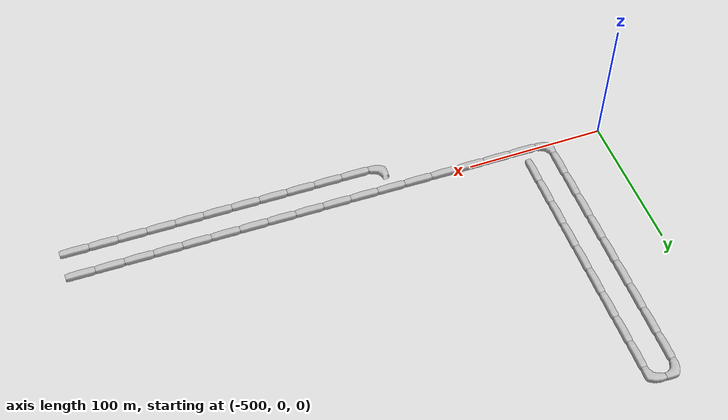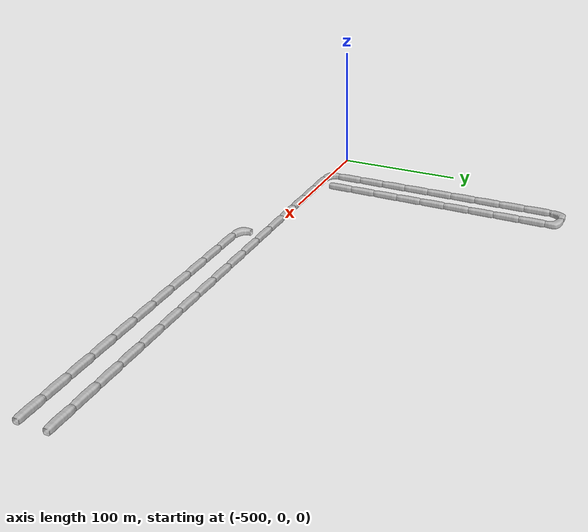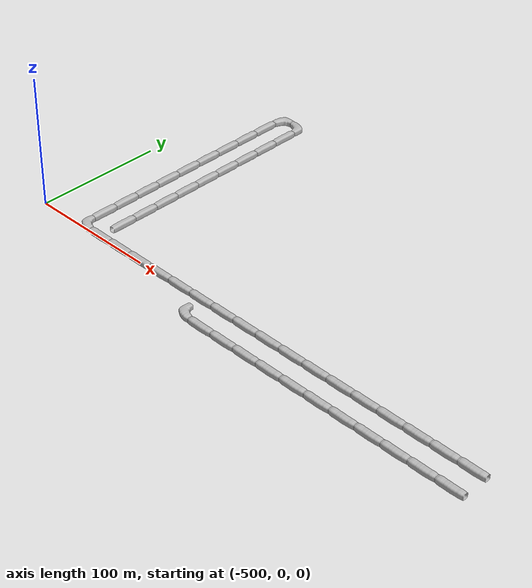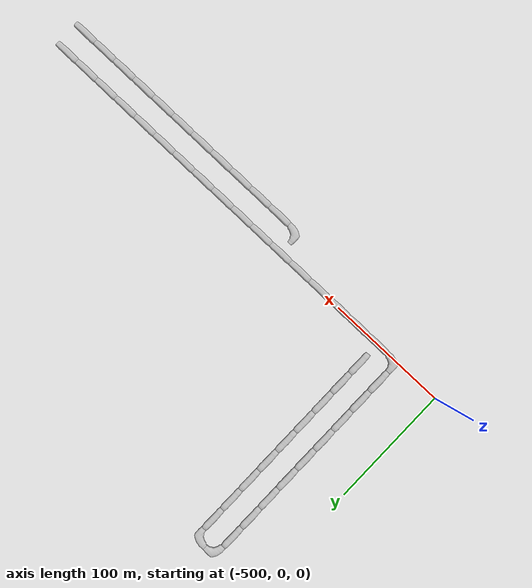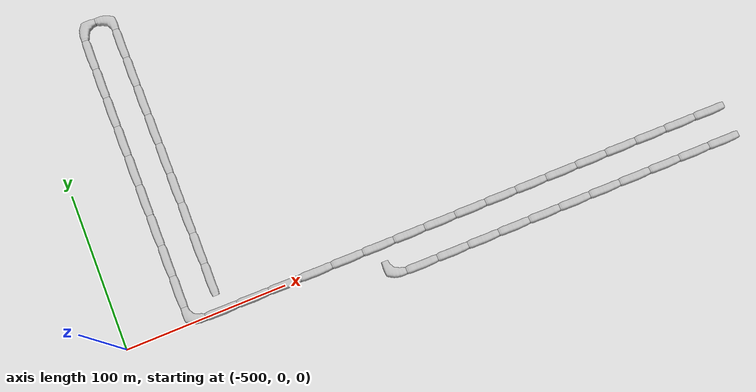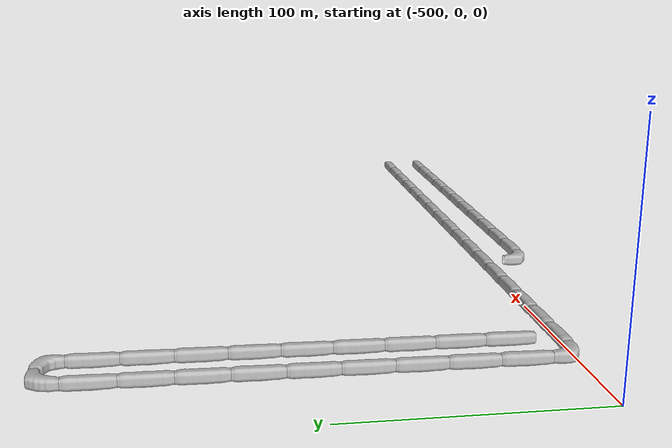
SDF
<sdf version="1.6">
 <world name="cave_8000_4">
  <include>
   <static>true</static>
   <name>cave_-6_-1</name>
   <pose>-120 -20 0 0 0 1.5707963267948966</pose>
   <uri>model://cave_straight_20m</uri>
  </include>
  <include>
   <static>true</static>
   <name>cave_-7_-1</name>
   <pose>-140 -20 0 0 0 1.5707963267948966</pose>
   <uri>model://cave_straight_20m</uri>
  </include>
  <include>
   <static>true</static>
   <name>cave_-8_-1</name>
   <pose>-160 -20 0 0 0 1.5707963267948966</pose>
   <uri>model://cave_straight_20m</uri>
  </include>
  <include>
   <static>true</static>
   <name>cave_-9_-1</name>
   <pose>-180 -20 0 0 0 1.5707963267948966</pose>
   <uri>model://cave_straight_20m</uri>
  </include>
  <include>
   <static>true</static>
   <name>cave_-10_-1</name>
   <pose>-200 -20 0 0 0 1.5707963267948966</pose>
   <uri>model://cave_straight_20m</uri>
  </include>
  <include>
   <static>true</static>
   <name>cave_-11_-1</name>
   <pose>-220 -20 0 0 0 1.5707963267948966</pose>
   <uri>model://cave_straight_20m</uri>
  </include>
  <include>
   <static>true</static>
   <name>cave_-12_-1</name>
   <pose>-240 -20 0 0 0 1.5707963267948966</pose>
   <uri>model://cave_straight_20m</uri>
  </include>
  <include>
   <static>true</static>
   <name>cave_-13_-1</name>
   <pose>-260 -20 0 0 0 1.5707963267948966</pose>
   <uri>model://cave_straight_20m</uri>
  </include>
  <include>
   <static>true</static>
   <name>cave_-14_-1</name>
   <pose>-280 -20 0 0 0 1.5707963267948966</pose>
   <uri>model://cave_straight_20m</uri>
  </include>
  <include>
   <static>true</static>
   <name>cave_-15_-1</name>
   <pose>-300 -20 0 0 0 1.5707963267948966</pose>
   <uri>model://cave_straight_20m</uri>
  </include>
  <include>
   <static>true</static>
   <name>cave_-16_-1</name>
   <pose>-320 -20 0 0 0 1.5707963267948966</pose>
   <uri>model://cave_straight_20m</uri>
  </include>
  <include>
   <static>true</static>
   <name>cave_-17_-1</name>
   <pose>-340 -20 0 0 0 0.0</pose>
   <uri>model://cave_L_20m</uri>
  </include>
  <include>
   <static>true</static>
   <name>cave_-6_0</name>
   <pose>-120 0 0 0 0 1.5707963267948966</pose>
   <uri>model://cave_straight_20m</uri>
  </include>
  <include>
   <static>true</static>
   <name>cave_-7_0</name>
   <pose>-140 0 0 0 0 1.5707963267948966</pose>
   <uri>model://cave_straight_20m</uri>
  </include>
  <include>
   <static>true</static>
   <name>cave_-8_0</name>
   <pose>-160 0 0 0 0 1.5707963267948966</pose>
   <uri>model://cave_straight_20m</uri>
  </include>
  <include>
   <static>true</static>
   <name>cave_-9_0</name>
   <pose>-180 0 0 0 0 1.5707963267948966</pose>
   <uri>model://cave_straight_20m</uri>
  </include>
  <include>
   <static>true</static>
   <name>cave_-10_0</name>
   <pose>-200 0 0 0 0 1.5707963267948966</pose>
   <uri>model://cave_straight_20m</uri>
  </include>
  <include>
   <static>true</static>
   <name>cave_-11_0</name>
   <pose>-220 0 0 0 0 1.5707963267948966</pose>
   <uri>model://cave_straight_20m</uri>
  </include>
  <include>
   <static>true</static>
   <name>cave_-12_0</name>
   <pose>-240 0 0 0 0 1.5707963267948966</pose>
   <uri>model://cave_straight_20m</uri>
  </include>
  <include>
   <static>true</static>
   <name>cave_-13_0</name>
   <pose>-260 0 0 0 0 1.5707963267948966</pose>
   <uri>model://cave_straight_20m</uri>
  </include>
  <include>
   <static>true</static>
   <name>cave_-14_0</name>
   <pose>-280 0 0 0 0 1.5707963267948966</pose>
   <uri>model://cave_straight_20m</uri>
  </include>
  <include>
   <static>true</static>
   <name>cave_-15_0</name>
   <pose>-300 0 0 0 0 1.5707963267948966</pose>
   <uri>model://cave_straight_20m</uri>
  </include>
  <include>
   <static>true</static>
   <name>cave_-16_0</name>
   <pose>-320 0 0 0 0 1.5707963267948966</pose>
   <uri>model://cave_straight_20m</uri>
  </include>
  <include>
   <static>true</static>
   <name>cave_-17_0</name>
   <pose>-340 0 0 0 0 1.5707963267948966</pose>
   <uri>model://cave_straight_20m</uri>
  </include>
  <include>
   <static>true</static>
   <name>cave_-18_0</name>
   <pose>-360 0 0 0 0 1.5707963267948966</pose>
   <uri>model://cave_straight_20m</uri>
  </include>
  <include>
   <static>true</static>
   <name>cave_-19_0</name>
   <pose>-380 0 0 0 0 1.5707963267948966</pose>
   <uri>model://cave_straight_20m</uri>
  </include>
  <include>
   <static>true</static>
   <name>cave_-20_0</name>
   <pose>-400 0 0 0 0 1.5707963267948966</pose>
   <uri>model://cave_straight_20m</uri>
  </include>
  <include>
   <static>true</static>
   <name>cave_-21_0</name>
   <pose>-420 0 0 0 0 1.5707963267948966</pose>
   <uri>model://cave_straight_20m</uri>
  </include>
  <include>
   <static>true</static>
   <name>cave_-22_0</name>
   <pose>-440 0 0 0 0 1.5707963267948966</pose>
   <uri>model://cave_straight_20m</uri>
  </include>
  <include>
   <static>true</static>
   <name>cave_-23_0</name>
   <pose>-460 0 0 0 0 0.0</pose>
   <uri>model://cave_L_20m</uri>
  </include>
  <include>
   <static>true</static>
   <name>cave_-23_1</name>
   <pose>-460 20 0 0 0 0.0</pose>
   <uri>model://cave_straight_20m</uri>
  </include>
  <include>
   <static>true</static>
   <name>cave_-23_2</name>
   <pose>-460 40 0 0 0 0.0</pose>
   <uri>model://cave_straight_20m</uri>
  </include>
  <include>
   <static>true</static>
   <name>cave_-23_3</name>
   <pose>-460 60 0 0 0 0.0</pose>
   <uri>model://cave_straight_20m</uri>
  </include>
  <include>
   <static>true</static>
   <name>cave_-23_4</name>
   <pose>-460 80 0 0 0 0.0</pose>
   <uri>model://cave_straight_20m</uri>
  </include>
  <include>
   <static>true</static>
   <name>cave_-23_5</name>
   <pose>-460 100 0 0 0 0.0</pose>
   <uri>model://cave_straight_20m</uri>
  </include>
  <include>
   <static>true</static>
   <name>cave_-23_6</name>
   <pose>-460 120 0 0 0 0.0</pose>
   <uri>model://cave_straight_20m</uri>
  </include>
  <include>
   <static>true</static>
   <name>cave_-23_7</name>
   <pose>-460 140 0 0 0 0.0</pose>
   <uri>model://cave_straight_20m</uri>
  </include>
  <include>
   <static>true</static>
   <name>cave_-23_8</name>
   <pose>-460 160 0 0 0 0.0</pose>
   <uri>model://cave_straight_20m</uri>
  </include>
  <include>
   <static>true</static>
   <name>cave_-23_9</name>
   <pose>-460 180 0 0 0 0.0</pose>
   <uri>model://cave_straight_20m</uri>
  </include>
  <include>
   <static>true</static>
   <name>cave_-23_10</name>
   <pose>-460 200 0 0 0 -1.5707963267948966</pose>
   <uri>model://cave_L_20m</uri>
  </include>
  <include>
   <static>true</static>
   <name>cave_-22_10</name>
   <pose>-440 200 0 0 0 3.141592653589793</pose>
   <uri>model://cave_L_20m</uri>
  </include>
  <include>
   <static>true</static>
   <name>cave_-22_9</name>
   <pose>-440 180 0 0 0 0.0</pose>
   <uri>model://cave_straight_20m</uri>
  </include>
  <include>
   <static>true</static>
   <name>cave_-22_8</name>
   <pose>-440 160 0 0 0 0.0</pose>
   <uri>model://cave_straight_20m</uri>
  </include>
  <include>
   <static>true</static>
   <name>cave_-22_7</name>
   <pose>-440 140 0 0 0 0.0</pose>
   <uri>model://cave_straight_20m</uri>
  </include>
  <include>
   <static>true</static>
   <name>cave_-22_6</name>
   <pose>-440 120 0 0 0 0.0</pose>
   <uri>model://cave_straight_20m</uri>
  </include>
  <include>
   <static>true</static>
   <name>cave_-22_5</name>
   <pose>-440 100 0 0 0 0.0</pose>
   <uri>model://cave_straight_20m</uri>
  </include>
  <include>
   <static>true</static>
   <name>cave_-22_4</name>
   <pose>-440 80 0 0 0 0.0</pose>
   <uri>model://cave_straight_20m</uri>
  </include>
  <include>
   <static>true</static>
   <name>cave_-22_3</name>
   <pose>-440 60 0 0 0 0.0</pose>
   <uri>model://cave_straight_20m</uri>
  </include>
  <include>
   <static>true</static>
   <name>cave_-22_2</name>
   <pose>-440 40 0 0 0 0.0</pose>
   <uri>model://cave_straight_20m</uri>
  </include>
  <include>
   <static>true</static>
   <name>cave_-22_1</name>
   <pose>-440 20 0 0 0 0.0</pose>
   <uri>model://cave_straight_20m</uri>
  </include>
 </world>
</sdf>
